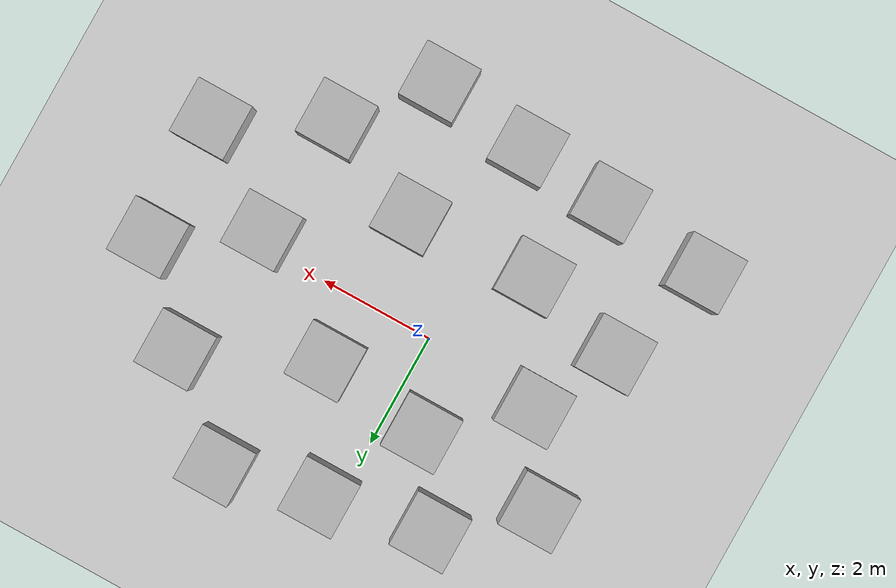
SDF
<sdf version="1.6">
  <world name='random'>
    <physics name='1ms' type='ignored'>
      <max_step_size>0.001</max_step_size>
      <real_time_factor>1</real_time_factor>
      <real_time_update_rate>1000</real_time_update_rate>
    </physics>
    <plugin name='gz::sim::systems::Physics' filename='gz-sim-physics-system'/>
    <plugin name='gz::sim::systems::UserCommands' filename='gz-sim-user-commands-system'/>
    <plugin name='gz::sim::systems::SceneBroadcaster' filename='gz-sim-scene-broadcaster-system'/>
    <plugin name='gz::sim::systems::Sensors' filename='gz-sim-sensors-system'>
      <render_engine>ogre2</render_engine>
    </plugin>
    <plugin name='gz::sim::systems::Contact' filename='gz-sim-contact-system'/>
    <gravity>0 0 -9.8</gravity>
    <magnetic_field>6e-06 2.3e-05 -4.2e-05</magnetic_field>
    <atmosphere type='adiabatic'/>
    <scene>
      <ambient>0.4 0.4 0.4 1</ambient>
      <background>0.7 0.7 0.7 1</background>
      <shadows>true</shadows>
    </scene>
    <model name='ground_plane'>
      <static>true</static>
      <link name='link'>
        <collision name='collision'>
          <geometry>
            <plane>
              <normal>0 0 1</normal>
              <size>100 100</size>
            </plane>
          </geometry>
          <surface>
            <friction>
              <ode/>
            </friction>
            <bounce/>
            <contact/>
          </surface>
        </collision>
        <visual name='visual'>
          <geometry>
            <plane>
              <normal>0 0 1</normal>
              <size>100 100</size>
            </plane>
          </geometry>
          <material>
            <ambient>0.8 0.8 0.8 1</ambient>
            <diffuse>0.8 0.8 0.8 1</diffuse>
            <specular>0.8 0.8 0.8 1</specular>
          </material>
        </visual>
        <pose>0 0 0 0 -0 0</pose>
        <inertial>
          <pose>0 0 0 0 -0 0</pose>
          <mass>1</mass>
          <inertia>
            <ixx>1</ixx>
            <ixy>0</ixy>
            <ixz>0</ixz>
            <iyy>1</iyy>
            <iyz>0</iyz>
            <izz>1</izz>
          </inertia>
        </inertial>
        <enable_wind>false</enable_wind>
      </link>
      <pose>0 0 0 0 -0 0</pose>
      <self_collide>false</self_collide>
    </model>
    <model name='box'>
      <pose>1.30385 1.12244 0.5 0 0 -0</pose>
      <link name='box_link'>
        <inertial>
          <inertia>
            <ixx>0.16666</ixx>
            <ixy>0</ixy>
            <ixz>0</ixz>
            <iyy>0.16666</iyy>
            <iyz>0</iyz>
            <izz>0.16666</izz>
          </inertia>
          <mass>1</mass>
          <pose>0 0 0 0 -0 0</pose>
        </inertial>
        <collision name='box_collision'>
          <geometry>
            <box>
              <size>1 1 1</size>
            </box>
          </geometry>
          <surface>
            <friction>
              <ode/>
            </friction>
            <bounce/>
            <contact/>
          </surface>
        </collision>
        <visual name='box_visual'>
          <geometry>
            <box>
              <size>1 1 1</size>
            </box>
          </geometry>
          <material>
            <ambient>0.3 0.3 0.3 1</ambient>
            <diffuse>0.7 0.7 0.7 1</diffuse>
            <specular>1 1 1 1</specular>
          </material>
        </visual>
        <pose>0 0 0 0 -0 0</pose>
        <enable_wind>false</enable_wind>
      </link>
      <static>false</static>
      <self_collide>false</self_collide>
    </model>
    <model name='box_1'>
      <pose>1.25062 -1.64247 0.5 0 0 -0</pose>
      <link name='box_link'>
        <inertial>
          <inertia>
            <ixx>0.16666</ixx>
            <ixy>0</ixy>
            <ixz>0</ixz>
            <iyy>0.16666</iyy>
            <iyz>0</iyz>
            <izz>0.16666</izz>
          </inertia>
          <mass>1</mass>
        </inertial>
        <collision name='box_collision'>
          <geometry>
            <box>
              <size>1 1 1</size>
            </box>
          </geometry>
          <surface>
            <friction>
              <ode/>
            </friction>
            <bounce/>
            <contact/>
          </surface>
        </collision>
        <visual name='box_visual'>
          <geometry>
            <box>
              <size>1 1 1</size>
            </box>
          </geometry>
          <material>
            <ambient>0.3 0.3 0.3 1</ambient>
            <diffuse>0.7 0.7 0.7 1</diffuse>
            <specular>1 1 1 1</specular>
          </material>
        </visual>
      </link>
      <static>false</static>
      <self_collide>false</self_collide>
    </model>
    <model name='box_2'>
      <pose>3.24745 -0.240205 0.5 0 0 -0</pose>
      <link name='box_link'>
        <inertial>
          <inertia>
            <ixx>0.16666</ixx>
            <ixy>0</ixy>
            <ixz>0</ixz>
            <iyy>0.16666</iyy>
            <iyz>0</iyz>
            <izz>0.16666</izz>
          </inertia>
          <mass>1</mass>
        </inertial>
        <collision name='box_collision'>
          <geometry>
            <box>
              <size>1 1 1</size>
            </box>
          </geometry>
          <surface>
            <friction>
              <ode/>
            </friction>
            <bounce/>
            <contact/>
          </surface>
        </collision>
        <visual name='box_visual'>
          <geometry>
            <box>
              <size>1 1 1</size>
            </box>
          </geometry>
          <material>
            <ambient>0.3 0.3 0.3 1</ambient>
            <diffuse>0.7 0.7 0.7 1</diffuse>
            <specular>1 1 1 1</specular>
          </material>
        </visual>
      </link>
      <static>false</static>
      <self_collide>false</self_collide>
    </model>
    <model name='box_3'>
      <pose>3.53268 2.14425 0.5 0 0 -0</pose>
      <link name='box_link'>
        <inertial>
          <inertia>
            <ixx>0.16666</ixx>
            <ixy>0</ixy>
            <ixz>0</ixz>
            <iyy>0.16666</iyy>
            <iyz>0</iyz>
            <izz>0.16666</izz>
          </inertia>
          <mass>1</mass>
        </inertial>
        <collision name='box_collision'>
          <geometry>
            <box>
              <size>1 1 1</size>
            </box>
          </geometry>
          <surface>
            <friction>
              <ode/>
            </friction>
            <bounce/>
            <contact/>
          </surface>
        </collision>
        <visual name='box_visual'>
          <geometry>
            <box>
              <size>1 1 1</size>
            </box>
          </geometry>
          <material>
            <ambient>0.3 0.3 0.3 1</ambient>
            <diffuse>0.7 0.7 0.7 1</diffuse>
            <specular>1 1 1 1</specular>
          </material>
        </visual>
      </link>
      <static>false</static>
      <self_collide>false</self_collide>
    </model>
    <model name='box_4'>
      <pose>0.314107 3.11696 0.5 0 0 -0</pose>
      <link name='box_link'>
        <inertial>
          <inertia>
            <ixx>0.16666</ixx>
            <ixy>0</ixy>
            <ixz>0</ixz>
            <iyy>0.16666</iyy>
            <iyz>0</iyz>
            <izz>0.16666</izz>
          </inertia>
          <mass>1</mass>
        </inertial>
        <collision name='box_collision'>
          <geometry>
            <box>
              <size>1 1 1</size>
            </box>
          </geometry>
          <surface>
            <friction>
              <ode/>
            </friction>
            <bounce/>
            <contact/>
          </surface>
        </collision>
        <visual name='box_visual'>
          <geometry>
            <box>
              <size>1 1 1</size>
            </box>
          </geometry>
          <material>
            <ambient>0.3 0.3 0.3 1</ambient>
            <diffuse>0.7 0.7 0.7 1</diffuse>
            <specular>1 1 1 1</specular>
          </material>
        </visual>
      </link>
      <static>false</static>
      <self_collide>false</self_collide>
    </model>
    <model name='box_5'>
      <pose>-0.636837 1.38638 0.5 0 0 -0</pose>
      <link name='box_link'>
        <inertial>
          <inertia>
            <ixx>0.16666</ixx>
            <ixy>0</ixy>
            <ixz>0</ixz>
            <iyy>0.16666</iyy>
            <iyz>0</iyz>
            <izz>0.16666</izz>
          </inertia>
          <mass>1</mass>
        </inertial>
        <collision name='box_collision'>
          <geometry>
            <box>
              <size>1 1 1</size>
            </box>
          </geometry>
          <surface>
            <friction>
              <ode/>
            </friction>
            <bounce/>
            <contact/>
          </surface>
        </collision>
        <visual name='box_visual'>
          <geometry>
            <box>
              <size>1 1 1</size>
            </box>
          </geometry>
          <material>
            <ambient>0.3 0.3 0.3 1</ambient>
            <diffuse>0.7 0.7 0.7 1</diffuse>
            <specular>1 1 1 1</specular>
          </material>
        </visual>
      </link>
      <static>false</static>
      <self_collide>false</self_collide>
    </model>
    <model name='box_1_1'>
      <pose>-1.01354 -1.73812 0.5 0 0 -0</pose>
      <link name='box_link'>
        <inertial>
          <inertia>
            <ixx>0.16666</ixx>
            <ixy>0</ixy>
            <ixz>0</ixz>
            <iyy>0.16666</iyy>
            <iyz>0</iyz>
            <izz>0.16666</izz>
          </inertia>
          <mass>1</mass>
        </inertial>
        <collision name='box_collision'>
          <geometry>
            <box>
              <size>1 1 1</size>
            </box>
          </geometry>
          <surface>
            <friction>
              <ode/>
            </friction>
            <bounce/>
            <contact/>
          </surface>
        </collision>
        <visual name='box_visual'>
          <geometry>
            <box>
              <size>1 1 1</size>
            </box>
          </geometry>
          <material>
            <ambient>0.3 0.3 0.3 1</ambient>
            <diffuse>0.7 0.7 0.7 1</diffuse>
            <specular>1 1 1 1</specular>
          </material>
        </visual>
      </link>
      <static>false</static>
      <self_collide>false</self_collide>
    </model>
    <model name='box_1_2'>
      <pose>-2.0545 0.134207 0.5 0 0 -0</pose>
      <link name='box_link'>
        <inertial>
          <inertia>
            <ixx>0.16666</ixx>
            <ixy>0</ixy>
            <ixz>0</ixz>
            <iyy>0.16666</iyy>
            <iyz>0</iyz>
            <izz>0.16666</izz>
          </inertia>
          <mass>1</mass>
        </inertial>
        <collision name='box_collision'>
          <geometry>
            <box>
              <size>1 1 1</size>
            </box>
          </geometry>
          <surface>
            <friction>
              <ode/>
            </friction>
            <bounce/>
            <contact/>
          </surface>
        </collision>
        <visual name='box_visual'>
          <geometry>
            <box>
              <size>1 1 1</size>
            </box>
          </geometry>
          <material>
            <ambient>0.3 0.3 0.3 1</ambient>
            <diffuse>0.7 0.7 0.7 1</diffuse>
            <specular>1 1 1 1</specular>
          </material>
        </visual>
      </link>
      <static>false</static>
      <self_collide>false</self_collide>
    </model>
    <model name='box_1_3'>
      <pose>0.114765 -3.54062 0.5 0 0 -0</pose>
      <link name='box_link'>
        <inertial>
          <inertia>
            <ixx>0.16666</ixx>
            <ixy>0</ixy>
            <ixz>0</ixz>
            <iyy>0.16666</iyy>
            <iyz>0</iyz>
            <izz>0.16666</izz>
          </inertia>
          <mass>1</mass>
        </inertial>
        <collision name='box_collision'>
          <geometry>
            <box>
              <size>1 1 1</size>
            </box>
          </geometry>
          <surface>
            <friction>
              <ode/>
            </friction>
            <bounce/>
            <contact/>
          </surface>
        </collision>
        <visual name='box_visual'>
          <geometry>
            <box>
              <size>1 1 1</size>
            </box>
          </geometry>
          <material>
            <ambient>0.3 0.3 0.3 1</ambient>
            <diffuse>0.7 0.7 0.7 1</diffuse>
            <specular>1 1 1 1</specular>
          </material>
        </visual>
      </link>
      <static>false</static>
      <self_collide>false</self_collide>
    </model>
    <model name='box_1_4'>
      <pose>3.0651 -2.41817 0.5 0 0 -0</pose>
      <link name='box_link'>
        <inertial>
          <inertia>
            <ixx>0.16666</ixx>
            <ixy>0</ixy>
            <ixz>0</ixz>
            <iyy>0.16666</iyy>
            <iyz>0</iyz>
            <izz>0.16666</izz>
          </inertia>
          <mass>1</mass>
        </inertial>
        <collision name='box_collision'>
          <geometry>
            <box>
              <size>1 1 1</size>
            </box>
          </geometry>
          <surface>
            <friction>
              <ode/>
            </friction>
            <bounce/>
            <contact/>
          </surface>
        </collision>
        <visual name='box_visual'>
          <geometry>
            <box>
              <size>1 1 1</size>
            </box>
          </geometry>
          <material>
            <ambient>0.3 0.3 0.3 1</ambient>
            <diffuse>0.7 0.7 0.7 1</diffuse>
            <specular>1 1 1 1</specular>
          </material>
        </visual>
      </link>
      <static>false</static>
      <self_collide>false</self_collide>
    </model>
    <model name='box_1_5'>
      <pose>1.88752 -3.76315 0.5 -0 -0 0</pose>
      <link name='box_link'>
        <inertial>
          <inertia>
            <ixx>0.16666</ixx>
            <ixy>0</ixy>
            <ixz>0</ixz>
            <iyy>0.16666</iyy>
            <iyz>0</iyz>
            <izz>0.16666</izz>
          </inertia>
          <mass>1</mass>
        </inertial>
        <collision name='box_collision'>
          <geometry>
            <box>
              <size>1 1 1</size>
            </box>
          </geometry>
          <surface>
            <friction>
              <ode/>
            </friction>
            <bounce/>
            <contact/>
          </surface>
        </collision>
        <visual name='box_visual'>
          <geometry>
            <box>
              <size>1 1 1</size>
            </box>
          </geometry>
          <material>
            <ambient>0.3 0.3 0.3 1</ambient>
            <diffuse>0.7 0.7 0.7 1</diffuse>
            <specular>1 1 1 1</specular>
          </material>
        </visual>
      </link>
      <static>false</static>
      <self_collide>false</self_collide>
    </model>
    <model name='box_1_6'>
      <pose>4.85316 -1.42343 0.5 0 0 -0</pose>
      <link name='box_link'>
        <inertial>
          <inertia>
            <ixx>0.16666</ixx>
            <ixy>0</ixy>
            <ixz>0</ixz>
            <iyy>0.16666</iyy>
            <iyz>0</iyz>
            <izz>0.16666</izz>
          </inertia>
          <mass>1</mass>
        </inertial>
        <collision name='box_collision'>
          <geometry>
            <box>
              <size>1 1 1</size>
            </box>
          </geometry>
          <surface>
            <friction>
              <ode/>
            </friction>
            <bounce/>
            <contact/>
          </surface>
        </collision>
        <visual name='box_visual'>
          <geometry>
            <box>
              <size>1 1 1</size>
            </box>
          </geometry>
          <material>
            <ambient>0.3 0.3 0.3 1</ambient>
            <diffuse>0.7 0.7 0.7 1</diffuse>
            <specular>1 1 1 1</specular>
          </material>
        </visual>
      </link>
      <static>false</static>
      <self_collide>false</self_collide>
    </model>
    <model name='box_1_7'>
      <pose>2.04962 3.49111 0.5 0 0 -0</pose>
      <link name='box_link'>
        <inertial>
          <inertia>
            <ixx>0.16666</ixx>
            <ixy>0</ixy>
            <ixz>0</ixz>
            <iyy>0.16666</iyy>
            <iyz>0</iyz>
            <izz>0.16666</izz>
          </inertia>
          <mass>1</mass>
        </inertial>
        <collision name='box_collision'>
          <geometry>
            <box>
              <size>1 1 1</size>
            </box>
          </geometry>
          <surface>
            <friction>
              <ode/>
            </friction>
            <bounce/>
            <contact/>
          </surface>
        </collision>
        <visual name='box_visual'>
          <geometry>
            <box>
              <size>1 1 1</size>
            </box>
          </geometry>
          <material>
            <ambient>0.3 0.3 0.3 1</ambient>
            <diffuse>0.7 0.7 0.7 1</diffuse>
            <specular>1 1 1 1</specular>
          </material>
        </visual>
      </link>
      <static>false</static>
      <self_collide>false</self_collide>
    </model>
    <model name='box_1_8'>
      <pose>4.81317 0.760352 0.5 -0 -0 0</pose>
      <link name='box_link'>
        <inertial>
          <inertia>
            <ixx>0.16666</ixx>
            <ixy>0</ixy>
            <ixz>0</ixz>
            <iyy>0.16666</iyy>
            <iyz>0</iyz>
            <izz>0.16666</izz>
          </inertia>
          <mass>1</mass>
        </inertial>
        <collision name='box_collision'>
          <geometry>
            <box>
              <size>1 1 1</size>
            </box>
          </geometry>
          <surface>
            <friction>
              <ode/>
            </friction>
            <bounce/>
            <contact/>
          </surface>
        </collision>
        <visual name='box_visual'>
          <geometry>
            <box>
              <size>1 1 1</size>
            </box>
          </geometry>
          <material>
            <ambient>0.3 0.3 0.3 1</ambient>
            <diffuse>0.7 0.7 0.7 1</diffuse>
            <specular>1 1 1 1</specular>
          </material>
        </visual>
      </link>
      <static>false</static>
      <self_collide>false</self_collide>
    </model>
    <model name='box_1_9'>
      <pose>-1.54797 2.73001 0.5 0 0 -0</pose>
      <link name='box_link'>
        <inertial>
          <inertia>
            <ixx>0.16666</ixx>
            <ixy>0</ixy>
            <ixz>0</ixz>
            <iyy>0.16666</iyy>
            <iyz>0</iyz>
            <izz>0.16666</izz>
          </inertia>
          <mass>1</mass>
        </inertial>
        <collision name='box_collision'>
          <geometry>
            <box>
              <size>1 1 1</size>
            </box>
          </geometry>
          <surface>
            <friction>
              <ode/>
            </friction>
            <bounce/>
            <contact/>
          </surface>
        </collision>
        <visual name='box_visual'>
          <geometry>
            <box>
              <size>1 1 1</size>
            </box>
          </geometry>
          <material>
            <ambient>0.3 0.3 0.3 1</ambient>
            <diffuse>0.7 0.7 0.7 1</diffuse>
            <specular>1 1 1 1</specular>
          </material>
        </visual>
      </link>
      <static>false</static>
      <self_collide>false</self_collide>
    </model>
    <model name='box_1_10'>
      <pose>-2.94123 1.57929 0.5 0 0 -0</pose>
      <link name='box_link'>
        <inertial>
          <inertia>
            <ixx>0.16666</ixx>
            <ixy>0</ixy>
            <ixz>0</ixz>
            <iyy>0.16666</iyy>
            <iyz>0</iyz>
            <izz>0.16666</izz>
          </inertia>
          <mass>1</mass>
        </inertial>
        <collision name='box_collision'>
          <geometry>
            <box>
              <size>1 1 1</size>
            </box>
          </geometry>
          <surface>
            <friction>
              <ode/>
            </friction>
            <bounce/>
            <contact/>
          </surface>
        </collision>
        <visual name='box_visual'>
          <geometry>
            <box>
              <size>1 1 1</size>
            </box>
          </geometry>
          <material>
            <ambient>0.3 0.3 0.3 1</ambient>
            <diffuse>0.7 0.7 0.7 1</diffuse>
            <specular>1 1 1 1</specular>
          </material>
        </visual>
      </link>
      <static>false</static>
      <self_collide>false</self_collide>
    </model>
    <model name='box_1_11'>
      <pose>-2.78452 -1.27084 0.5 0 0 -0</pose>
      <link name='box_link'>
        <inertial>
          <inertia>
            <ixx>0.16666</ixx>
            <ixy>0</ixy>
            <ixz>0</ixz>
            <iyy>0.16666</iyy>
            <iyz>0</iyz>
            <izz>0.16666</izz>
          </inertia>
          <mass>1</mass>
        </inertial>
        <collision name='box_collision'>
          <geometry>
            <box>
              <size>1 1 1</size>
            </box>
          </geometry>
          <surface>
            <friction>
              <ode/>
            </friction>
            <bounce/>
            <contact/>
          </surface>
        </collision>
        <visual name='box_visual'>
          <geometry>
            <box>
              <size>1 1 1</size>
            </box>
          </geometry>
          <material>
            <ambient>0.3 0.3 0.3 1</ambient>
            <diffuse>0.7 0.7 0.7 1</diffuse>
            <specular>1 1 1 1</specular>
          </material>
        </visual>
      </link>
      <static>false</static>
      <self_collide>false</self_collide>
    </model>
    <model name='box_1_12'>
      <pose>-1.51163 -3.40344 0.5 0 0 -0</pose>
      <link name='box_link'>
        <inertial>
          <inertia>
            <ixx>0.16666</ixx>
            <ixy>0</ixy>
            <ixz>0</ixz>
            <iyy>0.16666</iyy>
            <iyz>0</iyz>
            <izz>0.16666</izz>
          </inertia>
          <mass>1</mass>
        </inertial>
        <collision name='box_collision'>
          <geometry>
            <box>
              <size>1 1 1</size>
            </box>
          </geometry>
          <surface>
            <friction>
              <ode/>
            </friction>
            <bounce/>
            <contact/>
          </surface>
        </collision>
        <visual name='box_visual'>
          <geometry>
            <box>
              <size>1 1 1</size>
            </box>
          </geometry>
          <material>
            <ambient>0.3 0.3 0.3 1</ambient>
            <diffuse>0.7 0.7 0.7 1</diffuse>
            <specular>1 1 1 1</specular>
          </material>
        </visual>
      </link>
      <static>false</static>
      <self_collide>false</self_collide>
    </model>
    <model name='box_1_13'>
      <pose>-3.41974 -3.14592 0.5 0 0 -0</pose>
      <link name='box_link'>
        <inertial>
          <inertia>
            <ixx>0.16666</ixx>
            <ixy>0</ixy>
            <ixz>0</ixz>
            <iyy>0.16666</iyy>
            <iyz>0</iyz>
            <izz>0.16666</izz>
          </inertia>
          <mass>1</mass>
        </inertial>
        <collision name='box_collision'>
          <geometry>
            <box>
              <size>1 1 1</size>
            </box>
          </geometry>
          <surface>
            <friction>
              <ode/>
            </friction>
            <bounce/>
            <contact/>
          </surface>
        </collision>
        <visual name='box_visual'>
          <geometry>
            <box>
              <size>1 1 1</size>
            </box>
          </geometry>
          <material>
            <ambient>0.3 0.3 0.3 1</ambient>
            <diffuse>0.7 0.7 0.7 1</diffuse>
            <specular>1 1 1 1</specular>
          </material>
        </visual>
      </link>
      <static>false</static>
      <self_collide>false</self_collide>
    </model>
    <light name='sun' type='directional'>
      <pose>0 0 10 0 -0 0</pose>
      <cast_shadows>true</cast_shadows>
      <intensity>1</intensity>
      <direction>-0.5 0.1 -0.9</direction>
      <diffuse>0.8 0.8 0.8 1</diffuse>
      <specular>0.2 0.2 0.2 1</specular>
      <attenuation>
        <range>1000</range>
        <linear>0.01</linear>
        <constant>0.90000000000000002</constant>
        <quadratic>0.001</quadratic>
      </attenuation>
      <spot>
        <inner_angle>0</inner_angle>
        <outer_angle>0</outer_angle>
        <falloff>0</falloff>
      </spot>
    </light>
  </world>
</sdf>
